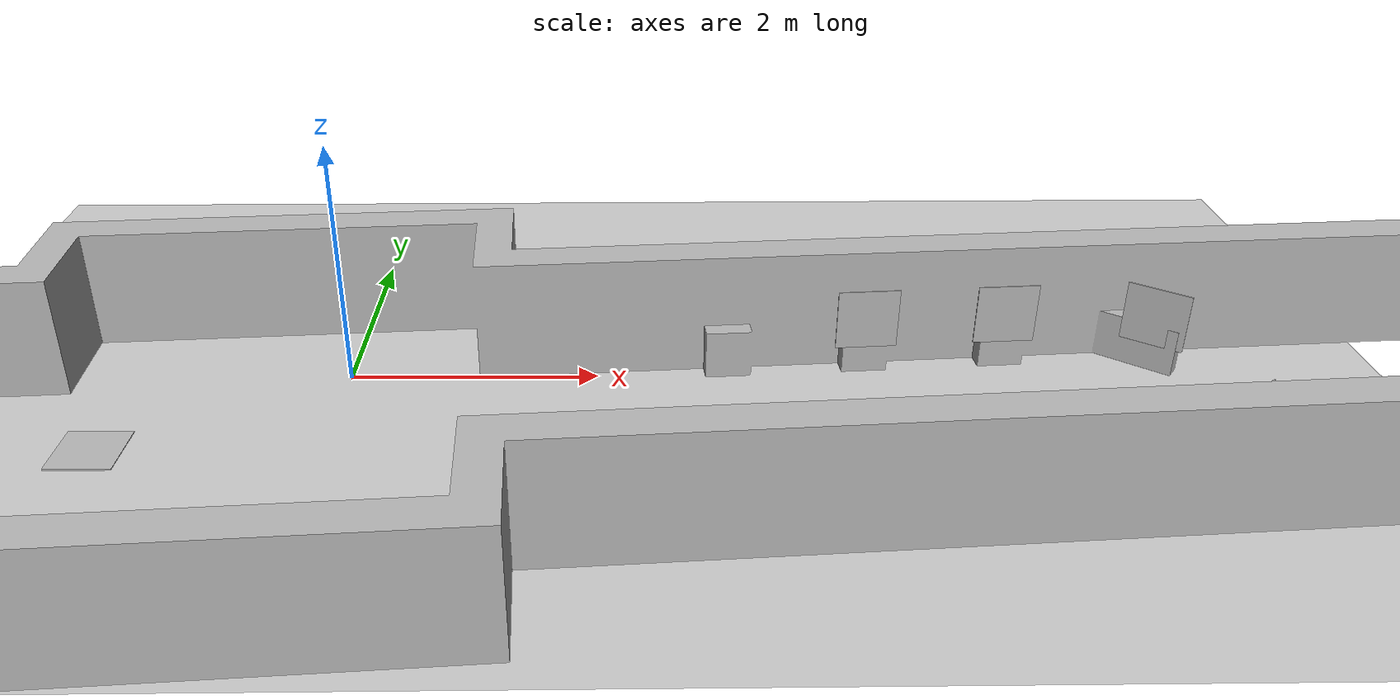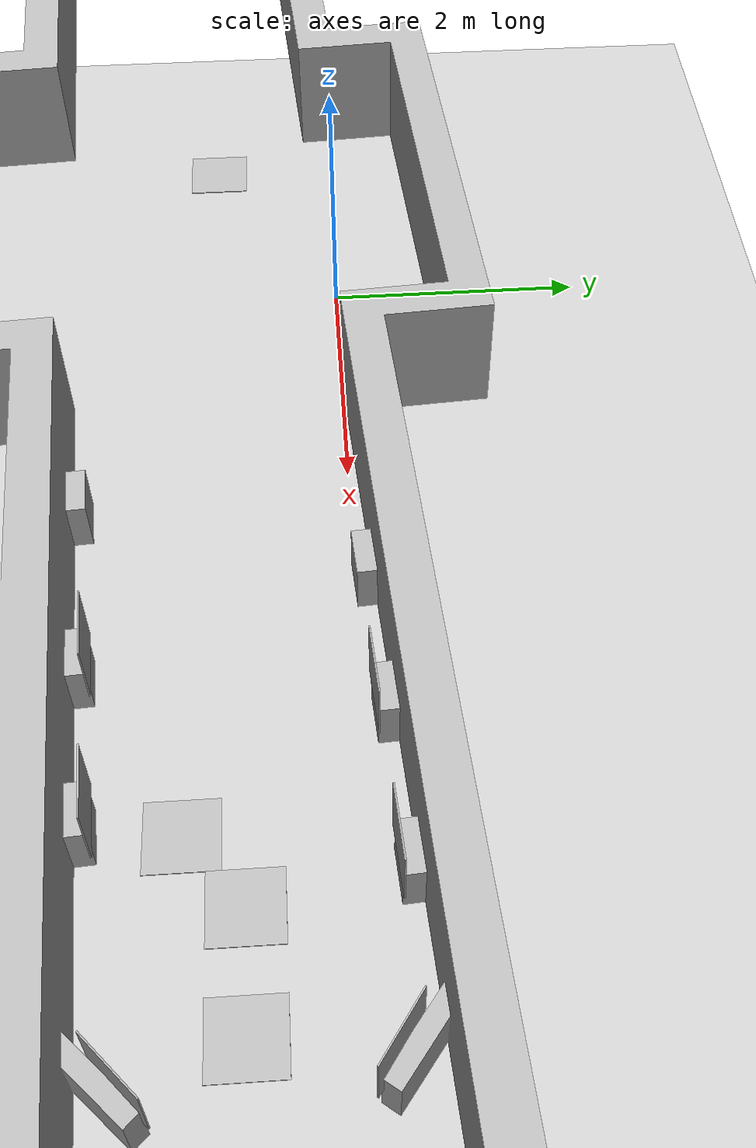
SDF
<sdf version="1.4">
 <world name="default">
  <include><uri>model://ground_plane</uri></include>
  <include><uri>model://sun</uri></include>
  <include><uri>file://models/inspire_corridor</uri></include>
  <include><pose>4.175520 0.067730 0.23 0 0 -1.504561</pose><uri>model://marker18</uri></include>
  <include><pose>4.700000 -1.20000 0.00 3.141593 1.558705 3.141593</pose><uri>model://marker19</uri></include>
  <include><pose>5.200000 -0.80000 0.00 3.141593 1.558705 3.141593</pose><uri>model://marker20</uri></include>
  <include><pose>3.768910 -1.81330 0.23 0 0 1.6370315</pose><uri>model://marker21</uri></include>
  <include><pose>5.313020 0.143180 0.23 0 0 -1.504561</pose><uri>model://marker22</uri></include>
  <include><pose>6.000000 -0.80000 0.00 3.141593 1.558705 3.141593</pose><uri>model://marker23</uri></include>
  <include><pose>6.502080 0.071200 0.23 0 0 0.9616333</pose><uri>model://marker24</uri></include>
  <include><pose>-2.00000 -1.00000 0.00 3.141593 1.558705 3.141593</pose><uri>model://marker25</uri></include>
  <include><pose>6.604590 -1.47438 0.23 0 0 2.3124296</pose><uri>model://marker27</uri></include>
  <include><pose>4.926360 -1.73653 0.23 0 0 1.6370315</pose><uri>model://marker29</uri></include>
 </world>
</sdf>

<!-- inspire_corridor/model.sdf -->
<sdf version="1.4">
<model name="inspire_corridor">
  <pose>0 0 0.5 0 0 0</pose>
  <static>true</static>
    <link name="link">
      <collision name="collision">
        <geometry>
          <mesh><uri>file://models/inspire_corridor/map_inspire_corridor_20181101.stl</uri></mesh>
        </geometry>
      </collision>
      <visual name="visual">
        <geometry>
          <mesh><uri>file://models/inspire_corridor/map_inspire_corridor_20181101.stl</uri></mesh>
        </geometry>
      </visual>
    </link>
  </model>
</sdf>

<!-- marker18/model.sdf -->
<sdf version="1.6">
  <model name="Marker18">
    <static>true</static>
    <link name="link">
      <visual name="visual">
        <geometry>
          <mesh>
            <uri>file:////home/vagrant/catkin_ws/src/cp3_base/models//marker18/marker18/meshes/Marker18.dae</uri>
          </mesh>
        </geometry>
      </visual>
    </link>
  </model>
</sdf>

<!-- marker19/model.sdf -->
<sdf version="1.6">
  <model name="Marker19">
    <static>true</static>
    <link name="link">
      <visual name="visual">
        <geometry>
          <mesh>
            <uri>file:////home/vagrant/catkin_ws/src/cp3_base/models//marker19/marker19/meshes/Marker19.dae</uri>
          </mesh>
        </geometry>
      </visual>
    </link>
  </model>
</sdf>

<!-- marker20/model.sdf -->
<sdf version="1.6">
  <model name="Marker20">
    <static>true</static>
    <link name="link">
      <visual name="visual">
        <geometry>
          <mesh>
            <uri>file:////home/vagrant/catkin_ws/src/cp3_base/models//marker20/marker20/meshes/Marker20.dae</uri>
          </mesh>
        </geometry>
      </visual>
    </link>
  </model>
</sdf>

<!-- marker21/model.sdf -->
<sdf version="1.6">
  <model name="Marker21">
    <static>true</static>
    <link name="link">
      <visual name="visual">
        <geometry>
          <mesh>
            <uri>file:////home/vagrant/catkin_ws/src/cp3_base/models//marker21/marker21/meshes/Marker21.dae</uri>
          </mesh>
        </geometry>
      </visual>
    </link>
  </model>
</sdf>

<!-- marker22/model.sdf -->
<sdf version="1.6">
  <model name="Marker22">
    <static>true</static>
    <link name="link">
      <visual name="visual">
        <geometry>
          <mesh>
            <uri>file:////home/vagrant/catkin_ws/src/cp3_base/models//marker22/marker22/meshes/Marker22.dae</uri>
          </mesh>
        </geometry>
      </visual>
    </link>
  </model>
</sdf>

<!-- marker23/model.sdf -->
<sdf version="1.6">
  <model name="Marker23">
    <static>true</static>
    <link name="link">
      <visual name="visual">
        <geometry>
          <mesh>
            <uri>file:////home/vagrant/catkin_ws/src/cp3_base/models//marker23/marker23/meshes/Marker23.dae</uri>
          </mesh>
        </geometry>
      </visual>
    </link>
  </model>
</sdf>

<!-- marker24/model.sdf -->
<sdf version="1.6">
  <model name="Marker24">
    <static>true</static>
    <link name="link">
      <visual name="visual">
        <geometry>
          <mesh>
            <uri>file:////home/vagrant/catkin_ws/src/cp3_base/models//marker24/marker24/meshes/Marker24.dae</uri>
          </mesh>
        </geometry>
      </visual>
    </link>
  </model>
</sdf>

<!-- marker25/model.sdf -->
<sdf version="1.6">
  <model name="Marker25">
    <static>true</static>
    <link name="link">
      <visual name="visual">
        <geometry>
          <mesh>
            <uri>file:////home/vagrant/catkin_ws/src/cp3_base/models//marker25/marker25/meshes/Marker25.dae</uri>
          </mesh>
        </geometry>
      </visual>
    </link>
  </model>
</sdf>

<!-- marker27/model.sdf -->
<sdf version="1.6">
  <model name="Marker27">
    <static>true</static>
    <link name="link">
      <visual name="visual">
        <geometry>
          <mesh>
            <uri>file:////home/vagrant/catkin_ws/src/cp3_base/models//marker27/marker27/meshes/Marker27.dae</uri>
          </mesh>
        </geometry>
      </visual>
    </link>
  </model>
</sdf>

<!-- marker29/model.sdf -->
<sdf version="1.6">
  <model name="Marker29">
    <static>true</static>
    <link name="link">
      <visual name="visual">
        <geometry>
          <mesh>
            <uri>file:////home/vagrant/catkin_ws/src/cp3_base/models//marker29/marker29/meshes/Marker29.dae</uri>
          </mesh>
        </geometry>
      </visual>
    </link>
  </model>
</sdf>
